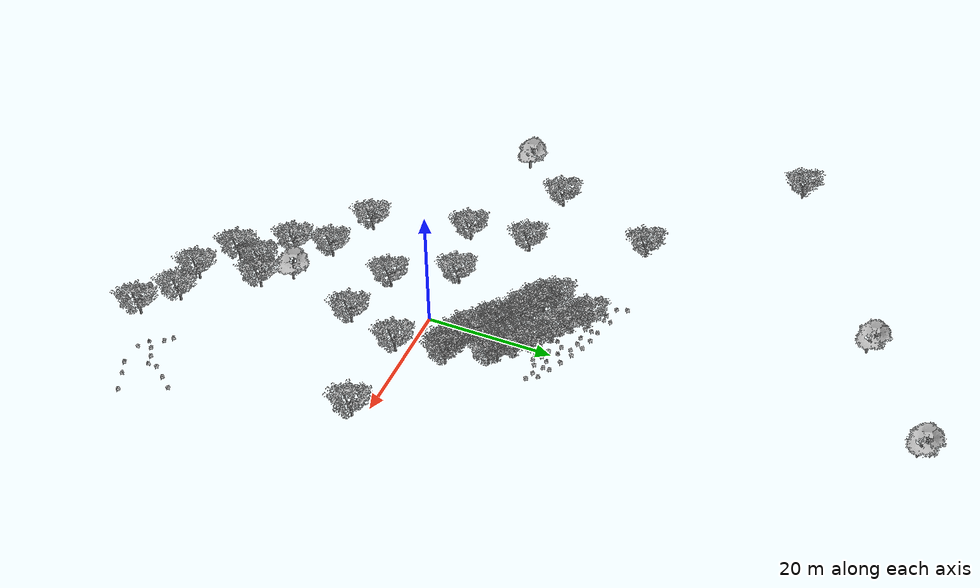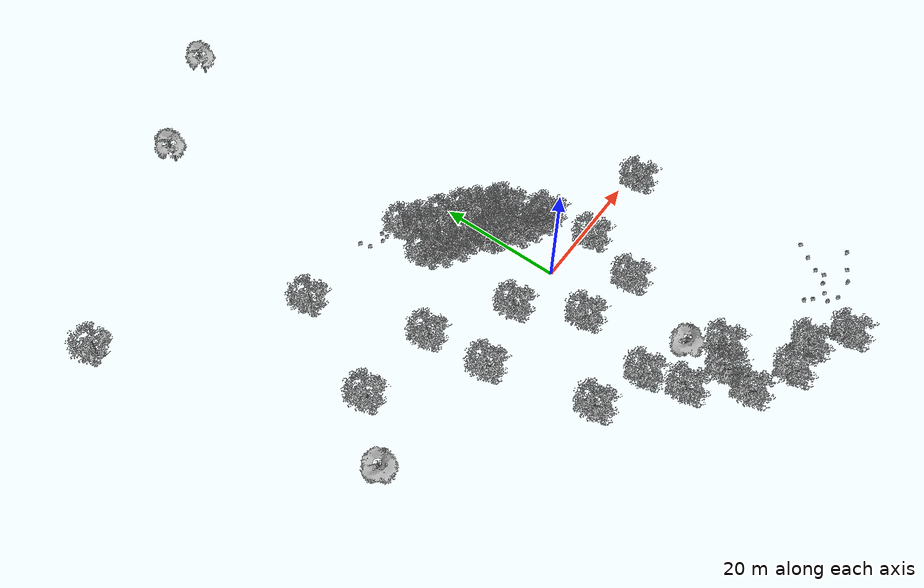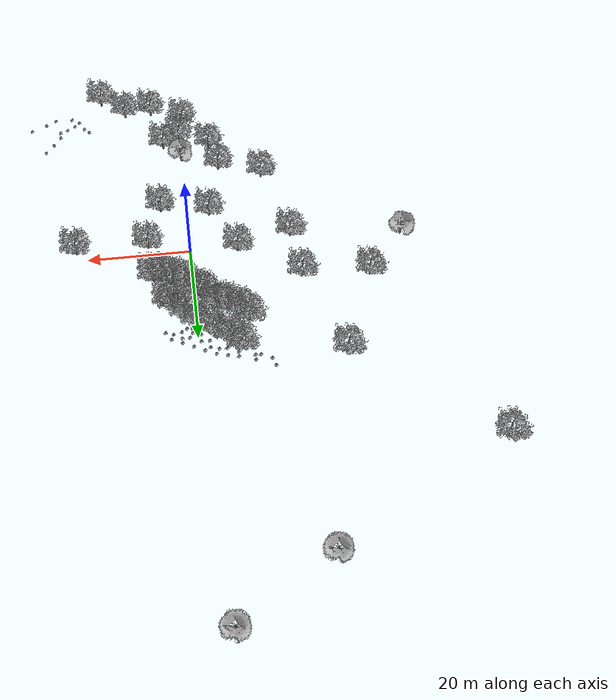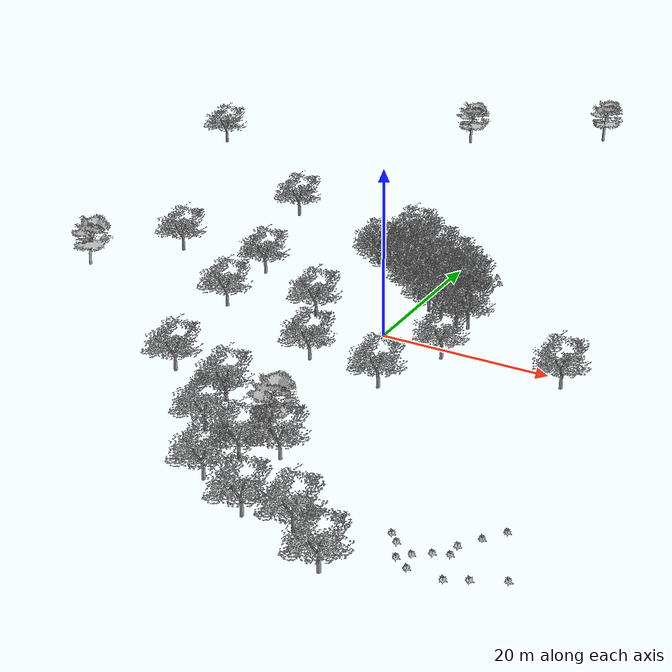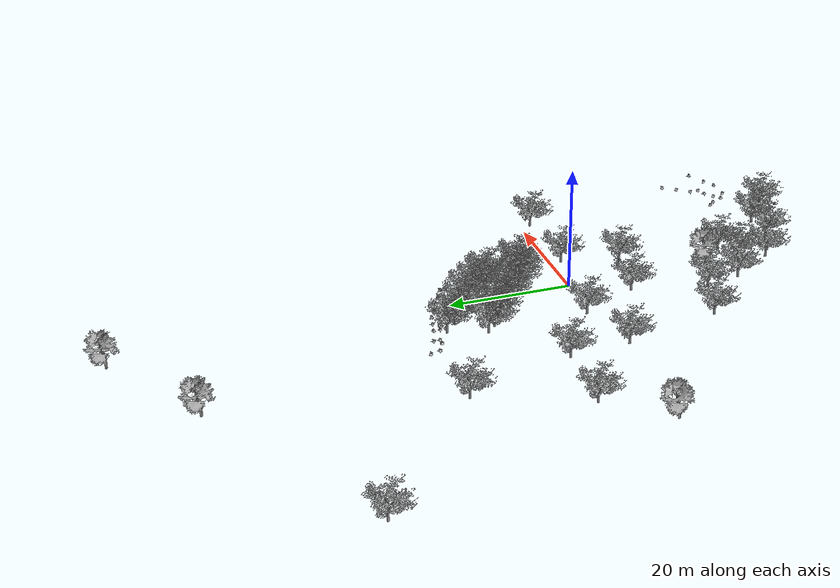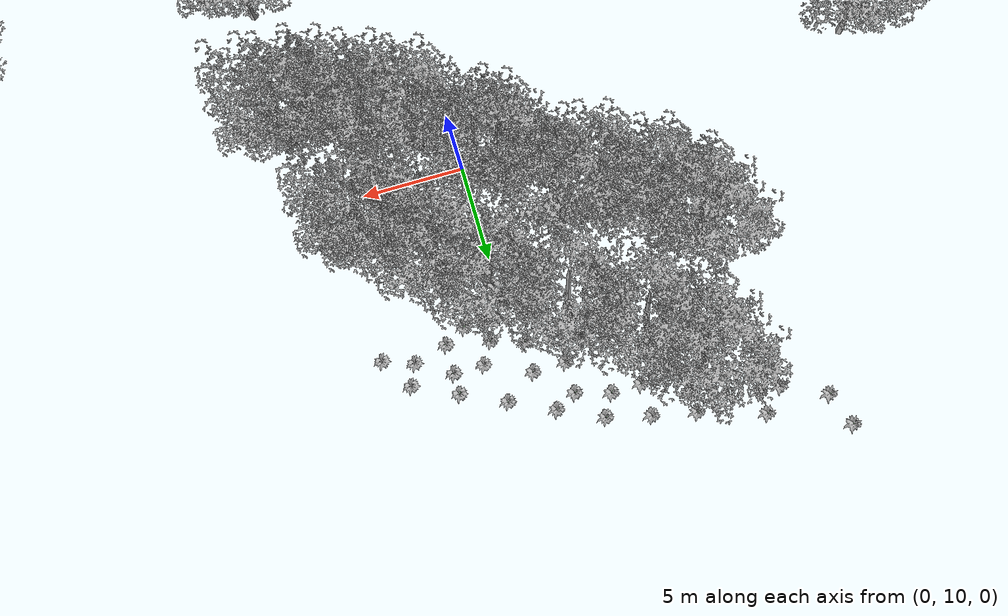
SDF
<sdf version="1.3">
 <world name="default">
  <physics type="ode">
   <update_rate>1000</update_rate>
   <gravity>0.0 0.0 -9.8</gravity>
   <ode>
    <constraints>
     <cfm>0.00001</cfm>
     <erp>0.2</erp>
     <contact_max_correcting_vel>100.0</contact_max_correcting_vel>
     <contact_surface_layer>0.001</contact_surface_layer>
    </constraints>
    <solver><type>quick</type><dt>0.001</dt><iters>50</iters><sor>1.3</sor></solver>
   </ode>
  </physics>
  <scene>
   <ambient>0.0 0.0 0.0 1.0</ambient>
   <background>0.7 0.7 0.7 1.0</background>
   <sky>
    <time>12</time>
    <sunrise>5</sunrise>
    <sunset>19</sunset>
    <clouds>
     <speed>0.02</speed>
     <direction>0</direction>
     <humidity>0.8</humidity>
     <mean_size>1</mean_size>
     <ambient>0.5 0.5 0.5 1.0</ambient>
    </clouds>
   </sky>
   <shadows>true</shadows>
   <grid>false</grid>
  </scene>
  <light name="sun" type="directional">
   <pose>0.0 0.0 20.0 0.0 0.0 0.0</pose>
   <diffuse>0.85 0.85 0.85 1.0</diffuse>
   <specular>0.15 0.15 0.15 1.0</specular>
   <attenuation>
    <range>1000.0</range>
    <constant>0.9</constant>
    <linear>0.01</linear>
    <quadratic>0.001</quadratic>
   </attenuation>
   <direction>-0.5 0.5 -1.0</direction>
  </light>
  <model name="finihed">
   <pose>-10.000000 17.000000 0.000000 0.000000 -0.000000 0.000000</pose>
   <static>1</static>
   <link name="link">
    <inertial>
     <mass>10.000000</mass>
     <inertia>
      <ixx>0.001000</ixx>
      <ixy>0.000000</ixy>
      <ixz>0.000000</ixz>
      <iyy>0.001000</iyy>
      <iyz>0.000000</iyz>
      <izz>0.001000</izz>
     </inertia>
    </inertial>
    <collision name="collision">
     <geometry><cylinder><radius>0.150000</radius><length>5.000000</length></cylinder></geometry>
    </collision>
    <visual name="visual">
     <geometry>
      <mesh><uri>model://finihed/meshes/finihed.dae</uri><scale>1.000000 1.000000 1.000000</scale></mesh>
     </geometry>
    </visual>
    <velocity_decay><linear>0.000000</linear><angular>0.000000</angular></velocity_decay>
   </link>
  </model>
  <include>
   <name>tree_1</name>
   <uri>model://finihed</uri>
   <pose>-8.457250 15.462320 0.000000 0.000000 -0.000000 0.000000</pose>
  </include>
  <model name="tree_2">
   <include>
    <uri>model://finihed</uri>
    <pose>-6.000000 14.000000 0.000000 0.000000 -0.000000 0.000000</pose>
   </include>
  </model>
  <model name="tree_3">
   <include>
    <uri>model://finihed</uri>
    <pose>-4.000000 13.574660 0.000000 0.000000 -0.000000 0.000000</pose>
   </include>
  </model>
  <model name="finihed_3">
   <include>
    <uri>model://finihed</uri>
    <pose>-2.000000 11.000000 0.000000 0.000000 -0.000000 0.000000</pose>
   </include>
  </model>
  <model name="finihed_4">
   <include>
    <uri>model://finihed</uri>
    <pose>-1.000000 10.463300 0.000000 0.000000 -0.000000 0.000000</pose>
   </include>
  </model>
  <model name="finihed_5">
   <include>
    <uri>model://finihed</uri>
    <pose>1.487640 8.000000 0.000000 0.000000 -0.000000 0.000000</pose>
   </include>
  </model>
  <model name="finihed_6">
   <include>
    <uri>model://finihed</uri>
    <pose>-8.000000 23.000000 0.000000 0.000000 -0.000000 0.000000</pose>
   </include>
  </model>
  <model name="finihed_7">
   <include>
    <uri>model://finihed</uri>
    <pose>-6.000000 21.000000 0.000000 0.000000 -0.000000 0.000000</pose>
   </include>
  </model>
  <model name="finihed_8">
   <include>
    <uri>model://finihed</uri>
    <pose>-3.000000 19.000000 0.000000 0.000000 -0.000000 0.000000</pose>
   </include>
  </model>
  <model name="finihed_9">
   <include>
    <uri>model://finihed</uri>
    <pose>0.000000 17.000000 0.000000 0.000000 -0.000000 0.000000</pose>
   </include>
  </model>
  <model name="finihed_10">
   <include>
    <uri>model://finihed</uri>
    <pose>2.000000 15.000000 0.000000 0.000000 -0.000000 0.000000</pose>
   </include>
  </model>
  <model name="finihed_11">
   <include>
    <uri>model://finihed</uri>
    <pose>4.000000 13.000000 0.000000 0.000000 -0.000000 0.000000</pose>
   </include>
  </model>
  <model name="finihed_12">
   <include>
    <uri>model://finihed</uri>
    <pose>5.000000 12.000000 0.000000 0.000000 -0.000000 0.000000</pose>
   </include>
  </model>
  <model name="finihed_13">
   <include>
    <uri>model://finihed</uri>
    <pose>3.559530 7.000000 0.000000 0.000000 -0.000000 0.000000</pose>
   </include>
  </model>
  <model name="finihed_14">
   <include>
    <uri>model://finihed</uri>
    <pose>6.000000 6.000000 0.000000 0.000000 -0.000000 0.000000</pose>
   </include>
  </model>
  <model name="finihed_15">
   <include>
    <uri>model://finihed</uri>
    <pose>7.459510 6.000000 0.000000 0.000000 -0.000000 0.000000</pose>
   </include>
  </model>
  <model name="Spathaphylum">
   <include>
    <uri>model://spathaphylum</uri>
    <pose>1.000000 18.000000 0.000000 0.000000 0.000000 0.000000</pose>
   </include>
  </model>
  <model name="Spathaphylum_0">
   <include>
    <uri>model://spathaphylum</uri>
    <pose>2.000000 18.000000 0.000000 0.000000 0.000000 0.000000</pose>
   </include>
  </model>
  <model name="Spathaphylum_1">
   <include>
    <uri>model://spathaphylum</uri>
    <pose>-2.000000 17.456520 0.000000 0.000000 0.000000 0.000000</pose>
   </include>
  </model>
  <model name="Spathaphylum_2">
   <include>
    <uri>model://spathaphylum</uri>
    <pose>0.000000 17.000000 0.000000 0.000000 0.000000 0.000000</pose>
   </include>
  </model>
  <model name="Spathaphylum_3">
   <include>
    <uri>model://spathaphylum</uri>
    <pose>-1.000000 18.000000 0.000000 0.000000 0.000000 0.000000</pose>
   </include>
  </model>
  <model name="Spathaphylum_4">
   <include>
    <uri>model://spathaphylum</uri>
    <pose>-4.000000 19.000000 0.000000 0.000000 0.000000 0.000000</pose>
   </include>
  </model>
  <model name="Spathaphylum_5">
   <include>
    <uri>model://spathaphylum</uri>
    <pose>-3.000000 20.000000 0.000000 0.000000 0.000000 0.000000</pose>
   </include>
  </model>
  <model name="Spathaphylum_6">
   <include>
    <uri>model://spathaphylum</uri>
    <pose>-0.529857 19.515920 0.000000 0.000000 0.000000 0.000000</pose>
   </include>
  </model>
  <model name="Spathaphylum_7">
   <include>
    <uri>model://spathaphylum</uri>
    <pose>1.000000 19.000000 0.000000 0.000000 0.000000 0.000000</pose>
   </include>
  </model>
  <model name="Spathaphylum_8">
   <include>
    <uri>model://spathaphylum</uri>
    <pose>3.000000 18.566140 0.000000 0.000000 0.000000 0.000000</pose>
   </include>
  </model>
  <model name="Spathaphylum_9">
   <include>
    <uri>model://spathaphylum</uri>
    <pose>3.000000 20.000000 0.000000 0.000000 0.000000 0.000000</pose>
   </include>
  </model>
  <model name="Spathaphylum_10">
   <include>
    <uri>model://spathaphylum</uri>
    <pose>4.591120 19.000000 0.000000 0.000000 0.000000 0.000000</pose>
   </include>
  </model>
  <model name="Spathaphylum_11">
   <include>
    <uri>model://spathaphylum</uri>
    <pose>1.000000 22.000000 0.000000 0.000000 0.000000 0.000000</pose>
   </include>
  </model>
  <model name="Spathaphylum_12">
   <include>
    <uri>model://spathaphylum</uri>
    <pose>3.000000 21.000000 0.000000 0.000000 0.000000 0.000000</pose>
   </include>
  </model>
  <model name="Spathaphylum_13">
   <include>
    <uri>model://spathaphylum</uri>
    <pose>-1.000000 23.000000 0.000000 0.000000 0.000000 0.000000</pose>
   </include>
  </model>
  <model name="Spathaphylum_14">
   <include>
    <uri>model://spathaphylum</uri>
    <pose>-3.000000 24.000000 0.000000 0.000000 0.000000 0.000000</pose>
   </include>
  </model>
  <model name="Spathaphylum_15">
   <include>
    <uri>model://spathaphylum</uri>
    <pose>-5.000000 24.536420 0.000000 0.000000 0.000000 0.000000</pose>
   </include>
  </model>
  <model name="Spathaphylum_16">
   <include>
    <uri>model://spathaphylum</uri>
    <pose>-7.000000 25.000000 0.000000 0.000000 0.000000 0.000000</pose>
   </include>
  </model>
  <model name="Spathaphylum_17">
   <include>
    <uri>model://spathaphylum</uri>
    <pose>-5.000000 23.000000 0.000000 0.000000 0.000000 0.000000</pose>
   </include>
  </model>
  <model name="Spathaphylum_18">
   <include>
    <uri>model://spathaphylum</uri>
    <pose>-0.475298 21.000000 0.000000 0.000000 0.000000 0.000000</pose>
   </include>
  </model>
  <model name="Spathaphylum_19">
   <include>
    <uri>model://spathaphylum</uri>
    <pose>-2.000000 21.000000 0.000000 0.000000 0.000000 0.000000</pose>
   </include>
  </model>
  <model name="Spathaphylum_20">
   <include>
    <uri>model://spathaphylum</uri>
    <pose>-3.593360 23.000000 0.000000 0.000000 0.000000 0.000000</pose>
   </include>
  </model>
  <model name="Spathaphylum_21">
   <include>
    <uri>model://spathaphylum</uri>
    <pose>1.591800 20.000000 0.000000 0.000000 0.000000 0.000000</pose>
   </include>
  </model>
  <model name="Spathaphylum_22">
   <include>
    <uri>model://spathaphylum</uri>
    <pose>-2.000000 22.500160 0.000000 0.000000 0.000000 0.000000</pose>
   </include>
  </model>
  <model name="Spathaphylum_23">
   <include>
    <uri>model://spathaphylum</uri>
    <pose>-7.000000 24.000000 0.000000 0.000000 0.000000 0.000000</pose>
   </include>
  </model>
  <model name="Spathaphylum_24">
   <include>
    <uri>model://spathaphylum</uri>
    <pose>-7.000000 23.000000 0.000000 0.000000 0.000000 0.000000</pose>
   </include>
  </model>
  <model name="Spathaphylum_25">
   <include>
    <uri>model://spathaphylum</uri>
    <pose>-10.000000 25.000000 0.000000 0.000000 0.000000 0.000000</pose>
   </include>
  </model>
  <model name="Spathaphylum_26">
   <include>
    <uri>model://spathaphylum</uri>
    <pose>-10.000000 26.000000 0.000000 0.000000 0.000000 0.000000</pose>
   </include>
  </model>
  <model name="Spathaphylum_27">
   <include>
    <uri>model://spathaphylum</uri>
    <pose>5.000000 20.000000 0.000000 0.000000 0.000000 0.000000</pose>
   </include>
  </model>
  <model name="Spathaphylum_28">
   <include>
    <uri>model://spathaphylum</uri>
    <pose>6.000000 18.466100 0.000000 0.000000 0.000000 0.000000</pose>
   </include>
  </model>
  <model name="Spathaphylum_29">
   <include>
    <uri>model://spathaphylum</uri>
    <pose>-4.569020 20.000000 0.000000 0.000000 0.000000 0.000000</pose>
   </include>
  </model>
  <model name="Spathaphylum_30">
   <include>
    <uri>model://spathaphylum</uri>
    <pose>-11.000000 25.000000 0.000000 0.000000 0.000000 0.000000</pose>
   </include>
  </model>
  <model name="Spathaphylum_31">
   <include>
    <uri>model://spathaphylum</uri>
    <pose>-13.501800 27.591200 0.000000 0.000000 0.000000 0.000000</pose>
   </include>
  </model>
  <model name="Spathaphylum_32">
   <include>
    <uri>model://spathaphylum</uri>
    <pose>-13.000000 26.000000 0.000000 0.000000 0.000000 0.000000</pose>
   </include>
  </model>
  <model name="finihed_0">
   <include>
    <uri>model://finihed</uri>
    <pose>-9.406170 0.582100 0.000000 0.000000 0.000000 0.000000</pose>
   </include>
  </model>
  <model name="finihed_1">
   <include>
    <uri>model://finihed</uri>
    <pose>5.000000 -11.000000 0.000000 0.000000 0.000000 0.000000</pose>
   </include>
  </model>
  <model name="finihed_2">
   <include>
    <uri>model://finihed</uri>
    <pose>-4.563540 -9.000000 0.000000 0.000000 0.000000 0.000000</pose>
   </include>
  </model>
  <model name="finihed_16">
   <include>
    <uri>model://finihed</uri>
    <pose>-52.000000 46.000000 0.000000 0.000000 0.000000 0.000000</pose>
   </include>
  </model>
  <model name="finihed_17">
   <include>
    <uri>model://finihed</uri>
    <pose>-34.000000 9.000000 0.000000 0.000000 0.000000 0.000000</pose>
   </include>
  </model>
  <model name="finihed_18">
   <include>
    <uri>model://finihed</uri>
    <pose>22.000000 -2.000000 0.000000 0.000000 0.000000 0.000000</pose>
   </include>
  </model>
  <model name="finihed_19">
   <include>
    <uri>model://finihed</uri>
    <pose>8.000000 -2.000000 0.000000 0.000000 0.000000 0.000000</pose>
   </include>
  </model>
  <model name="finihed_20">
   <include>
    <uri>model://finihed</uri>
    <pose>-27.000000 26.000000 0.000000 0.000000 0.000000 0.000000</pose>
   </include>
  </model>
  <model name="finihed_21">
   <include>
    <uri>model://finihed</uri>
    <pose>-21.000000 8.000000 0.000000 0.000000 0.000000 0.000000</pose>
   </include>
  </model>
  <model name="finihed_22">
   <include>
    <uri>model://finihed</uri>
    <pose>-20.000000 -2.000000 0.000000 0.000000 0.000000 0.000000</pose>
   </include>
  </model>
  <model name="finihed_23">
   <include>
    <uri>model://finihed</uri>
    <pose>-16.000000 -18.000000 0.000000 0.000000 0.000000 0.000000</pose>
   </include>
  </model>
  <model name="fanPalm">
   <include>
    <uri>model://fanPalm</uri>
    <pose>0.000000 -24.000000 0.000000 0.000000 0.000000 0.000000</pose>
   </include>
  </model>
  <model name="fanPalm_0">
   <include>
    <uri>model://fanPalm</uri>
    <pose>-41.561400 -0.000000 0.000000 0.000000 0.000000 0.000000</pose>
   </include>
  </model>
  <model name="fanPalm_1">
   <include>
    <uri>model://fanPalm</uri>
    <pose>-1.481720 74.000000 0.000000 0.000000 0.000000 0.000000</pose>
   </include>
  </model>
  <model name="fanPalm_2">
   <include>
    <uri>model://fanPalm</uri>
    <pose>-19.000000 63.562700 0.000000 0.000000 0.000000 0.000000</pose>
   </include>
  </model>
  <model name="finihed_24">
   <include>
    <uri>model://finihed</uri>
    <pose>0.000000 -30.000000 0.000000 0.000000 0.000000 0.000000</pose>
   </include>
  </model>
  <model name="finihed_25">
   <include>
    <uri>model://finihed</uri>
    <pose>3.431760 -28.000000 0.000000 0.000000 0.000000 0.000000</pose>
   </include>
  </model>
  <model name="finihed_26">
   <include>
    <uri>model://finihed</uri>
    <pose>-6.000000 -27.000000 0.000000 0.000000 0.000000 0.000000</pose>
   </include>
  </model>
  <model name="finihed_27">
   <include>
    <uri>model://finihed</uri>
    <pose>-7.491620 -21.000000 0.000000 0.000000 0.000000 0.000000</pose>
   </include>
  </model>
  <model name="finihed_28">
   <include>
    <uri>model://finihed</uri>
    <pose>-1.000000 -34.532300 0.000000 0.000000 0.000000 0.000000</pose>
   </include>
  </model>
  <model name="finihed_29">
   <include>
    <uri>model://finihed</uri>
    <pose>5.553360 -38.000000 0.000000 0.000000 0.000000 0.000000</pose>
   </include>
  </model>
  <model name="finihed_30">
   <include>
    <uri>model://finihed</uri>
    <pose>11.000000 -38.000000 0.000000 0.000000 0.000000 0.000000</pose>
   </include>
  </model>
  <model name="finihed_31">
   <include>
    <uri>model://finihed</uri>
    <pose>16.000000 -42.000000 0.000000 0.000000 0.000000 0.000000</pose>
   </include>
  </model>
  <model name="Spathaphylum_33">
   <include>
    <uri>model://spathaphylum</uri>
    <pose>19.000000 -34.000000 0.000000 0.000000 0.000000 0.000000</pose>
   </include>
  </model>
  <model name="Spathaphylum_34">
   <include>
    <uri>model://spathaphylum</uri>
    <pose>20.000000 -35.000000 0.000000 0.000000 0.000000 0.000000</pose>
   </include>
  </model>
  <model name="Spathaphylum_35">
   <include>
    <uri>model://spathaphylum</uri>
    <pose>23.520400 -35.000000 0.000000 0.000000 0.000000 0.000000</pose>
   </include>
  </model>
  <model name="Spathaphylum_36">
   <include>
    <uri>model://spathaphylum</uri>
    <pose>22.536700 -38.000000 0.000000 0.000000 0.000000 0.000000</pose>
   </include>
  </model>
  <model name="Spathaphylum_37">
   <include>
    <uri>model://spathaphylum</uri>
    <pose>21.000000 -37.000000 0.000000 0.000000 0.000000 0.000000</pose>
   </include>
  </model>
  <model name="Spathaphylum_38">
   <include>
    <uri>model://spathaphylum</uri>
    <pose>22.000000 -36.000000 0.000000 0.000000 0.000000 0.000000</pose>
   </include>
  </model>
  <model name="Spathaphylum_39">
   <include>
    <uri>model://spathaphylum</uri>
    <pose>26.000000 -38.000000 0.000000 0.000000 0.000000 0.000000</pose>
   </include>
  </model>
  <model name="Spathaphylum_40">
   <include>
    <uri>model://spathaphylum</uri>
    <pose>28.000000 -37.000000 0.000000 0.000000 0.000000 0.000000</pose>
   </include>
  </model>
  <model name="Spathaphylum_41">
   <include>
    <uri>model://spathaphylum</uri>
    <pose>31.000000 -35.577500 0.000000 0.000000 0.000000 0.000000</pose>
   </include>
  </model>
  <model name="Spathaphylum_42">
   <include>
    <uri>model://spathaphylum</uri>
    <pose>25.000000 -33.000000 0.000000 0.000000 0.000000 0.000000</pose>
   </include>
  </model>
  <model name="Spathaphylum_43">
   <include>
    <uri>model://spathaphylum</uri>
    <pose>26.456700 -31.000000 0.000000 0.000000 0.000000 0.000000</pose>
   </include>
  </model>
  <model name="Spathaphylum_44">
   <include>
    <uri>model://spathaphylum</uri>
    <pose>25.000000 -34.471100 0.000000 0.000000 0.000000 0.000000</pose>
   </include>
  </model>
  <model name="Spathaphylum_45">
   <include>
    <uri>model://spathaphylum</uri>
    <pose>28.000000 -29.000000 0.000000 0.000000 0.000000 0.000000</pose>
   </include>
  </model>
 </world>
</sdf>

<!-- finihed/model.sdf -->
<sdf version="1.4">
	<model name="finihed">
		<pose>0 0 0 0 0 0</pose>
		<static>true</static>
		<allow_auto_disable>false</allow_auto_disable>
		<link name="link">
			<pose>0 0 0 0 0 0</pose>
			<inertial>
				<mass>10</mass>
				<pose>0 0 0 0 0 0</pose>
				<inertia>
					<ixx>0.001</ixx>
					<ixy>0</ixy>
					<ixz>0</ixz>
					<iyy>0.001</iyy>
					<iyz>0</iyz>
					<izz>0.001</izz>
				</inertia>
			</inertial>

			<collision name="collision">
				<laser_retro>0.5</laser_retro>
				<geometry>
					<pose>0 -0.05 0 0 0 0</pose>
					<cylinder>
						<radius>0.15</radius>
						<length>2.001</length>
					</cylinder>
				</geometry>
			</collision>

			<visual name="visual">
				<geometry>
					<mesh>
						<uri>model://finihed/meshes/finihed.dae</uri>
						<scale>1 1 1</scale>
					</mesh>
				</geometry>
			</visual>
			<self_collide>false</self_collide>
			<kinematic>false</kinematic>
			<gravity>true</gravity>
		</link>
	</model>
</sdf>

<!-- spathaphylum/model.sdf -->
<sdf version="1.4">
	<model name="Spathaphylum">
		<pose>0 0 0 0 0 0</pose>
		<static>true</static>
		<allow_auto_disable>true</allow_auto_disable>
		<link name="link">
			<pose>0 0 0 0 0 0</pose>
			<inertial>
				<mass>10</mass>
				<pose>0 0 0 0 0 0</pose>
				<inertia>
					<ixx>10</ixx>
					<ixy>0</ixy>
					<ixz>0</ixz>
					<iyy>10</iyy>
					<iyz>0</iyz>
					<izz>10</izz>
				</inertia>
			</inertial>
			<visual name="visual">
				<geometry>
					<mesh>
						<uri>model://spathaphylum/meshes/Spathaphylum.dae</uri>
					</mesh>
				</geometry>
			</visual>
		</link>

	</model>
</sdf>

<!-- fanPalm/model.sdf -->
<sdf version="1.4">
	<model name="fanPalm">
		<pose>0 0 0 0 0 0</pose>
		<static>true</static>
		<allow_auto_disable>true</allow_auto_disable>
		<link name="link">
			<pose>0 0 0 1.57 0 0</pose>
			<inertial>
				<mass>10</mass>
				<pose>0 0 0 0 0 0</pose>
				<inertia>
					<ixx>10</ixx>
					<ixy>0</ixy>
					<ixz>0</ixz>
					<iyy>10</iyy>
					<iyz>0</iyz>
					<izz>10</izz>
				</inertia>
			</inertial>
			<collision name="collision">
				<geometry>
					<cylinder>
						<radius>0.07</radius>
						<length>5.0</length>
					</cylinder>
				</geometry>

			</collision>
			<visual name="visual">
				<geometry>
					<mesh>
						<uri>model://fanPalm/meshes/fanPalm.dae</uri>
					</mesh>
				</geometry>
			</visual>
		</link>

	</model>
</sdf>
